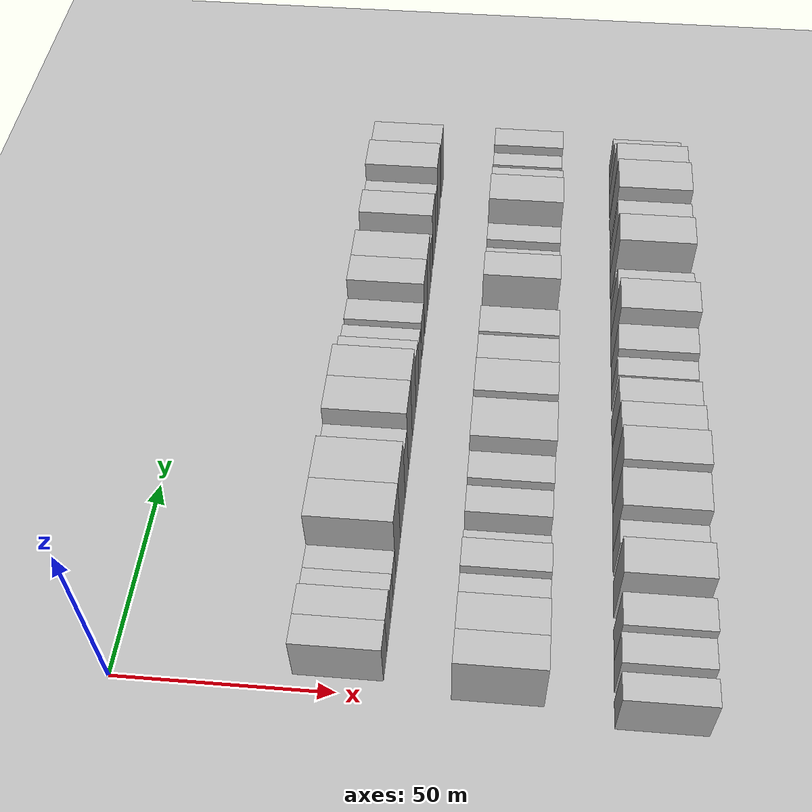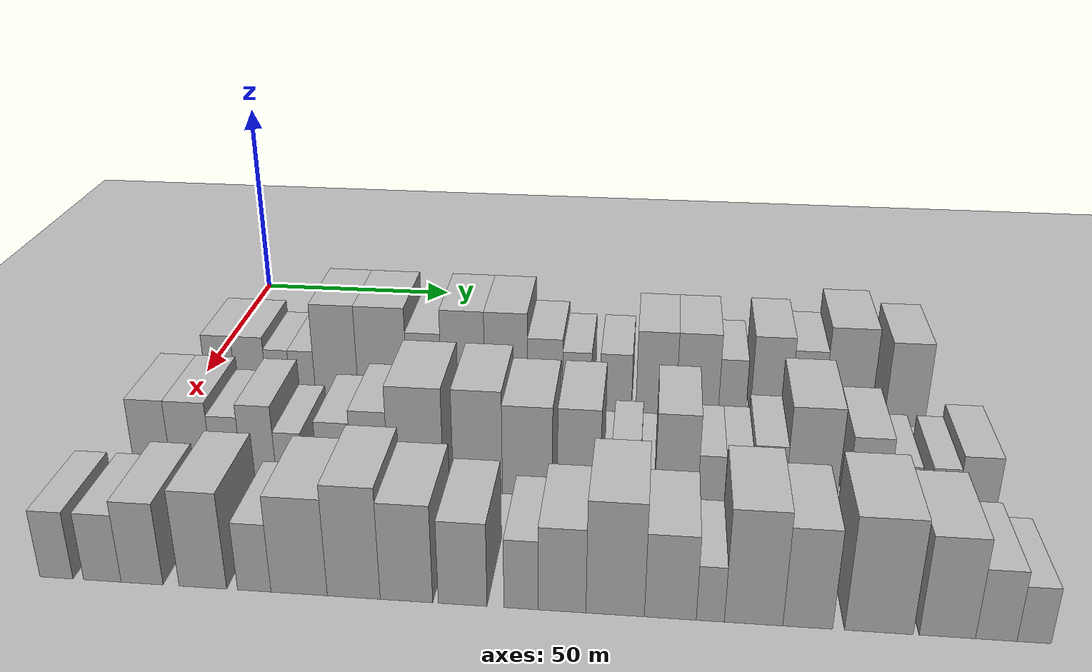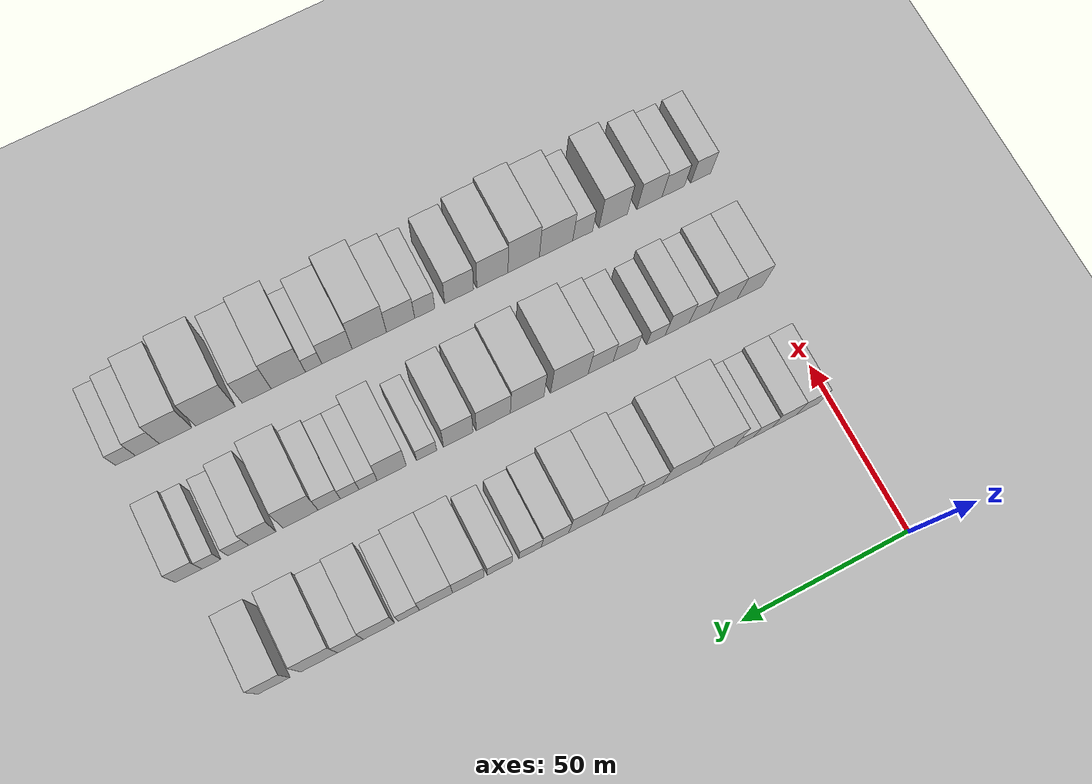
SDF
<sdf version="1.6">
 <world name="default">
  <include><name>ground_plane_1</name><uri>model://HANNAS_ground_plane</uri></include>
  <include>
   <name>ground_plane_2</name>
   <uri>model://HANNAS_ground_plane</uri>
   <pose>100 0 0  0 0 0</pose>
  </include>
  <model name="building_42">
   <static>1</static>
   <pose>50.0000 6.8600 0 0.000000 0.000000 0.000000</pose>
   <link name="link">
    <pose>0 0 7.50 0 0 0</pose>
    <collision name="collision"><geometry><box><size>20.0000 7.0399 15.0000</size></box></geometry></collision>
    <visual name="visual">
     <cast_shadows>0</cast_shadows>
     <geometry><box><size>20.0000 7.0399 15.0000</size></box></geometry>
     <material>
      <script>
       <uri>model://HANNAS_wall/materials/scripts</uri>
       <uri>model://HANNAS_wall/materials/textures</uri>
       <name>vrc/HANNAS_wall</name>
      </script>
     </material>
    </visual>
   </link>
  </model>
  <model name="building_43">
   <static>1</static>
   <pose>50.0000 14.0422 0 0.000000 0.000000 0.000000</pose>
   <link name="link">
    <pose>0 0 7.50 0 0 0</pose>
    <collision name="collision"><geometry><box><size>20.0000 7.3246 15.0000</size></box></geometry></collision>
    <visual name="visual">
     <cast_shadows>0</cast_shadows>
     <geometry><box><size>20.0000 7.3246 15.0000</size></box></geometry>
     <material>
      <script>
       <uri>model://HANNAS_wall/materials/scripts</uri>
       <uri>model://HANNAS_wall/materials/textures</uri>
       <name>vrc/HANNAS_wall</name>
      </script>
     </material>
    </visual>
   </link>
  </model>
  <model name="building_44">
   <static>1</static>
   <pose>50.0000 20.5373 0 0.000000 0.000000 0.000000</pose>
   <link name="link">
    <pose>0 0 6.00 0 0 0</pose>
    <collision name="collision"><geometry><box><size>20.0000 5.6656 12.0000</size></box></geometry></collision>
    <visual name="visual">
     <cast_shadows>0</cast_shadows>
     <geometry><box><size>20.0000 5.6656 12.0000</size></box></geometry>
     <material>
      <script>
       <uri>model://HANNAS_wall/materials/scripts</uri>
       <uri>model://HANNAS_wall/materials/textures</uri>
       <name>vrc/HANNAS_wall</name>
      </script>
     </material>
    </visual>
   </link>
  </model>
  <model name="building_45">
   <static>1</static>
   <pose>50.0000 26.3202 0 0.000000 0.000000 0.000000</pose>
   <link name="link">
    <pose>0 0 6.00 0 0 0</pose>
    <collision name="collision"><geometry><box><size>20.0000 5.9001 12.0000</size></box></geometry></collision>
    <visual name="visual">
     <cast_shadows>0</cast_shadows>
     <geometry><box><size>20.0000 5.9001 12.0000</size></box></geometry>
     <material>
      <script>
       <uri>model://HANNAS_wall/materials/scripts</uri>
       <uri>model://HANNAS_wall/materials/textures</uri>
       <name>vrc/HANNAS_wall</name>
      </script>
     </material>
    </visual>
   </link>
  </model>
  <model name="building_46">
   <static>1</static>
   <pose>50.0000 34.3133 0 0.000000 0.000000 0.000000</pose>
   <link name="link">
    <pose>0 0 12.00 0 0 0</pose>
    <collision name="collision"><geometry><box><size>20.0000 10.0861 24.0000</size></box></geometry></collision>
    <visual name="visual">
     <cast_shadows>0</cast_shadows>
     <geometry><box><size>20.0000 10.0861 24.0000</size></box></geometry>
     <material>
      <script>
       <uri>model://HANNAS_wall/materials/scripts</uri>
       <uri>model://HANNAS_wall/materials/textures</uri>
       <name>vrc/HANNAS_wall</name>
      </script>
     </material>
    </visual>
   </link>
  </model>
  <model name="building_47">
   <static>1</static>
   <pose>50.0000 45.0939 0 0.000000 0.000000 0.000000</pose>
   <link name="link">
    <pose>0 0 12.00 0 0 0</pose>
    <collision name="collision"><geometry><box><size>20.0000 11.4751 24.0000</size></box></geometry></collision>
    <visual name="visual">
     <cast_shadows>0</cast_shadows>
     <geometry><box><size>20.0000 11.4751 24.0000</size></box></geometry>
     <material>
      <script>
       <uri>model://HANNAS_wall/materials/scripts</uri>
       <uri>model://HANNAS_wall/materials/textures</uri>
       <name>vrc/HANNAS_wall</name>
      </script>
     </material>
    </visual>
   </link>
  </model>
  <model name="building_48">
   <static>1</static>
   <pose>50.0000 54.8109 0 0.000000 0.000000 0.000000</pose>
   <link name="link">
    <pose>0 0 9.00 0 0 0</pose>
    <collision name="collision"><geometry><box><size>20.0000 7.9590 18.0000</size></box></geometry></collision>
    <visual name="visual">
     <cast_shadows>0</cast_shadows>
     <geometry><box><size>20.0000 7.9590 18.0000</size></box></geometry>
     <material>
      <script>
       <uri>model://HANNAS_wall/materials/scripts</uri>
       <uri>model://HANNAS_wall/materials/textures</uri>
       <name>vrc/HANNAS_wall</name>
      </script>
     </material>
    </visual>
   </link>
  </model>
  <model name="building_49">
   <static>1</static>
   <pose>50.0000 63.7737 0 0.000000 0.000000 0.000000</pose>
   <link name="link">
    <pose>0 0 12.00 0 0 0</pose>
    <collision name="collision"><geometry><box><size>20.0000 9.9664 24.0000</size></box></geometry></collision>
    <visual name="visual">
     <cast_shadows>0</cast_shadows>
     <geometry><box><size>20.0000 9.9664 24.0000</size></box></geometry>
     <material>
      <script>
       <uri>model://HANNAS_wall/materials/scripts</uri>
       <uri>model://HANNAS_wall/materials/textures</uri>
       <name>vrc/HANNAS_wall</name>
      </script>
     </material>
    </visual>
   </link>
  </model>
  <model name="building_50">
   <static>1</static>
   <pose>50.0000 73.6236 0 0.000000 0.000000 0.000000</pose>
   <link name="link">
    <pose>0 0 12.00 0 0 0</pose>
    <collision name="collision"><geometry><box><size>20.0000 9.7335 24.0000</size></box></geometry></collision>
    <visual name="visual">
     <cast_shadows>0</cast_shadows>
     <geometry><box><size>20.0000 9.7335 24.0000</size></box></geometry>
     <material>
      <script>
       <uri>model://HANNAS_wall/materials/scripts</uri>
       <uri>model://HANNAS_wall/materials/textures</uri>
       <name>vrc/HANNAS_wall</name>
      </script>
     </material>
    </visual>
   </link>
  </model>
  <model name="building_51">
   <static>1</static>
   <pose>50.0000 82.4567 0 0.000000 0.000000 0.000000</pose>
   <link name="link">
    <pose>0 0 9.00 0 0 0</pose>
    <collision name="collision"><geometry><box><size>20.0000 7.9325 18.0000</size></box></geometry></collision>
    <visual name="visual">
     <cast_shadows>0</cast_shadows>
     <geometry><box><size>20.0000 7.9325 18.0000</size></box></geometry>
     <material>
      <script>
       <uri>model://HANNAS_wall/materials/scripts</uri>
       <uri>model://HANNAS_wall/materials/textures</uri>
       <name>vrc/HANNAS_wall</name>
      </script>
     </material>
    </visual>
   </link>
  </model>
  <model name="building_52">
   <static>1</static>
   <pose>50.0000 89.6756 0 0.000000 0.000000 0.000000</pose>
   <link name="link">
    <pose>0 0 7.50 0 0 0</pose>
    <collision name="collision"><geometry><box><size>20.0000 6.5054 15.0000</size></box></geometry></collision>
    <visual name="visual">
     <cast_shadows>0</cast_shadows>
     <geometry><box><size>20.0000 6.5054 15.0000</size></box></geometry>
     <material>
      <script>
       <uri>model://HANNAS_wall/materials/scripts</uri>
       <uri>model://HANNAS_wall/materials/textures</uri>
       <name>vrc/HANNAS_wall</name>
      </script>
     </material>
    </visual>
   </link>
  </model>
  <model name="building_53">
   <static>1</static>
   <pose>50.0000 98.4816 0 0.000000 0.000000 0.000000</pose>
   <link name="link">
    <pose>0 0 7.50 0 0 0</pose>
    <collision name="collision"><geometry><box><size>20.0000 7.1066 15.0000</size></box></geometry></collision>
    <visual name="visual">
     <cast_shadows>0</cast_shadows>
     <geometry><box><size>20.0000 7.1066 15.0000</size></box></geometry>
     <material>
      <script>
       <uri>model://HANNAS_wall/materials/scripts</uri>
       <uri>model://HANNAS_wall/materials/textures</uri>
       <name>vrc/HANNAS_wall</name>
      </script>
     </material>
    </visual>
   </link>
  </model>
  <model name="building_54">
   <static>1</static>
   <pose>50.0000 107.5217 0 0.000000 0.000000 0.000000</pose>
   <link name="link">
    <pose>0 0 10.50 0 0 0</pose>
    <collision name="collision"><geometry><box><size>20.0000 8.9736 21.0000</size></box></geometry></collision>
    <visual name="visual">
     <cast_shadows>0</cast_shadows>
     <geometry><box><size>20.0000 8.9736 21.0000</size></box></geometry>
     <material>
      <script>
       <uri>model://HANNAS_wall/materials/scripts</uri>
       <uri>model://HANNAS_wall/materials/textures</uri>
       <name>vrc/HANNAS_wall</name>
      </script>
     </material>
    </visual>
   </link>
  </model>
  <model name="building_55">
   <static>1</static>
   <pose>50.0000 116.7191 0 0.000000 0.000000 0.000000</pose>
   <link name="link">
    <pose>0 0 10.50 0 0 0</pose>
    <collision name="collision"><geometry><box><size>20.0000 9.4214 21.0000</size></box></geometry></collision>
    <visual name="visual">
     <cast_shadows>0</cast_shadows>
     <geometry><box><size>20.0000 9.4214 21.0000</size></box></geometry>
     <material>
      <script>
       <uri>model://HANNAS_wall/materials/scripts</uri>
       <uri>model://HANNAS_wall/materials/textures</uri>
       <name>vrc/HANNAS_wall</name>
      </script>
     </material>
    </visual>
   </link>
  </model>
  <model name="building_56">
   <static>1</static>
   <pose>50.0000 124.4558 0 0.000000 0.000000 0.000000</pose>
   <link name="link">
    <pose>0 0 7.50 0 0 0</pose>
    <collision name="collision"><geometry><box><size>20.0000 6.0521 15.0000</size></box></geometry></collision>
    <visual name="visual">
     <cast_shadows>0</cast_shadows>
     <geometry><box><size>20.0000 6.0521 15.0000</size></box></geometry>
     <material>
      <script>
       <uri>model://HANNAS_wall/materials/scripts</uri>
       <uri>model://HANNAS_wall/materials/textures</uri>
       <name>vrc/HANNAS_wall</name>
      </script>
     </material>
    </visual>
   </link>
  </model>
  <model name="building_57">
   <static>1</static>
   <pose>50.0000 132.8750 0 0.000000 0.000000 0.000000</pose>
   <link name="link">
    <pose>0 0 10.50 0 0 0</pose>
    <collision name="collision"><geometry><box><size>20.0000 8.7862 21.0000</size></box></geometry></collision>
    <visual name="visual">
     <cast_shadows>0</cast_shadows>
     <geometry><box><size>20.0000 8.7862 21.0000</size></box></geometry>
     <material>
      <script>
       <uri>model://HANNAS_wall/materials/scripts</uri>
       <uri>model://HANNAS_wall/materials/textures</uri>
       <name>vrc/HANNAS_wall</name>
      </script>
     </material>
    </visual>
   </link>
  </model>
  <model name="building_58">
   <static>1</static>
   <pose>50.0000 140.8989 0 0.000000 0.000000 0.000000</pose>
   <link name="link">
    <pose>0 0 9.00 0 0 0</pose>
    <collision name="collision"><geometry><box><size>20.0000 7.2616 18.0000</size></box></geometry></collision>
    <visual name="visual">
     <cast_shadows>0</cast_shadows>
     <geometry><box><size>20.0000 7.2616 18.0000</size></box></geometry>
     <material>
      <script>
       <uri>model://HANNAS_wall/materials/scripts</uri>
       <uri>model://HANNAS_wall/materials/textures</uri>
       <name>vrc/HANNAS_wall</name>
      </script>
     </material>
    </visual>
   </link>
  </model>
  <model name="building_59">
   <static>1</static>
   <pose>50.0000 149.6867 0 0.000000 0.000000 0.000000</pose>
   <link name="link">
    <pose>0 0 12.00 0 0 0</pose>
    <collision name="collision"><geometry><box><size>20.0000 10.3141 24.0000</size></box></geometry></collision>
    <visual name="visual">
     <cast_shadows>0</cast_shadows>
     <geometry><box><size>20.0000 10.3141 24.0000</size></box></geometry>
     <material>
      <script>
       <uri>model://HANNAS_wall/materials/scripts</uri>
       <uri>model://HANNAS_wall/materials/textures</uri>
       <name>vrc/HANNAS_wall</name>
      </script>
     </material>
    </visual>
   </link>
  </model>
  <model name="building_60">
   <static>1</static>
   <pose>50.0000 162.2554 0 0.000000 0.000000 0.000000</pose>
   <link name="link">
    <pose>0 0 10.50 0 0 0</pose>
    <collision name="collision"><geometry><box><size>20.0000 8.8233 21.0000</size></box></geometry></collision>
    <visual name="visual">
     <cast_shadows>0</cast_shadows>
     <geometry><box><size>20.0000 8.8233 21.0000</size></box></geometry>
     <material>
      <script>
       <uri>model://HANNAS_wall/materials/scripts</uri>
       <uri>model://HANNAS_wall/materials/textures</uri>
       <name>vrc/HANNAS_wall</name>
      </script>
     </material>
    </visual>
   </link>
  </model>
  <model name="building_119">
   <static>1</static>
   <pose>85.0000 4.2833 0 0.000000 0.000000 0.000000</pose>
   <link name="link">
    <pose>0 0 9.00 0 0 0</pose>
    <collision name="collision"><geometry><box><size>20.0000 7.8999 18.0000</size></box></geometry></collision>
    <visual name="visual">
     <cast_shadows>0</cast_shadows>
     <geometry><box><size>20.0000 7.8999 18.0000</size></box></geometry>
     <material>
      <script>
       <uri>model://HANNAS_wall/materials/scripts</uri>
       <uri>model://HANNAS_wall/materials/textures</uri>
       <name>vrc/HANNAS_wall</name>
      </script>
     </material>
    </visual>
   </link>
  </model>
  <model name="building_120">
   <static>1</static>
   <pose>85.0000 12.5709 0 0.000000 0.000000 0.000000</pose>
   <link name="link">
    <pose>0 0 9.00 0 0 0</pose>
    <collision name="collision"><geometry><box><size>20.0000 8.6753 18.0000</size></box></geometry></collision>
    <visual name="visual">
     <cast_shadows>0</cast_shadows>
     <geometry><box><size>20.0000 8.6753 18.0000</size></box></geometry>
     <material>
      <script>
       <uri>model://HANNAS_wall/materials/scripts</uri>
       <uri>model://HANNAS_wall/materials/textures</uri>
       <name>vrc/HANNAS_wall</name>
      </script>
     </material>
    </visual>
   </link>
  </model>
  <model name="building_121">
   <static>1</static>
   <pose>85.0000 20.0702 0 0.000000 0.000000 0.000000</pose>
   <link name="link">
    <pose>0 0 7.50 0 0 0</pose>
    <collision name="collision"><geometry><box><size>20.0000 6.3232 15.0000</size></box></geometry></collision>
    <visual name="visual">
     <cast_shadows>0</cast_shadows>
     <geometry><box><size>20.0000 6.3232 15.0000</size></box></geometry>
     <material>
      <script>
       <uri>model://HANNAS_wall/materials/scripts</uri>
       <uri>model://HANNAS_wall/materials/textures</uri>
       <name>vrc/HANNAS_wall</name>
      </script>
     </material>
    </visual>
   </link>
  </model>
  <model name="building_122">
   <static>1</static>
   <pose>85.0000 26.8433 0 0.000000 0.000000 0.000000</pose>
   <link name="link">
    <pose>0 0 9.00 0 0 0</pose>
    <collision name="collision"><geometry><box><size>20.0000 7.2231 18.0000</size></box></geometry></collision>
    <visual name="visual">
     <cast_shadows>0</cast_shadows>
     <geometry><box><size>20.0000 7.2231 18.0000</size></box></geometry>
     <material>
      <script>
       <uri>model://HANNAS_wall/materials/scripts</uri>
       <uri>model://HANNAS_wall/materials/textures</uri>
       <name>vrc/HANNAS_wall</name>
      </script>
     </material>
    </visual>
   </link>
  </model>
  <model name="building_123">
   <static>1</static>
   <pose>85.0000 33.2931 0 0.000000 0.000000 0.000000</pose>
   <link name="link">
    <pose>0 0 6.00 0 0 0</pose>
    <collision name="collision"><geometry><box><size>20.0000 5.6765 12.0000</size></box></geometry></collision>
    <visual name="visual">
     <cast_shadows>0</cast_shadows>
     <geometry><box><size>20.0000 5.6765 12.0000</size></box></geometry>
     <material>
      <script>
       <uri>model://HANNAS_wall/materials/scripts</uri>
       <uri>model://HANNAS_wall/materials/textures</uri>
       <name>vrc/HANNAS_wall</name>
      </script>
     </material>
    </visual>
   </link>
  </model>
  <model name="building_124">
   <static>1</static>
   <pose>85.0000 42.7305 0 0.000000 0.000000 0.000000</pose>
   <link name="link">
    <pose>0 0 7.50 0 0 0</pose>
    <collision name="collision"><geometry><box><size>20.0000 7.1983 15.0000</size></box></geometry></collision>
    <visual name="visual">
     <cast_shadows>0</cast_shadows>
     <geometry><box><size>20.0000 7.1983 15.0000</size></box></geometry>
     <material>
      <script>
       <uri>model://HANNAS_wall/materials/scripts</uri>
       <uri>model://HANNAS_wall/materials/textures</uri>
       <name>vrc/HANNAS_wall</name>
      </script>
     </material>
    </visual>
   </link>
  </model>
  <model name="building_125">
   <static>1</static>
   <pose>85.0000 50.1093 0 0.000000 0.000000 0.000000</pose>
   <link name="link">
    <pose>0 0 9.00 0 0 0</pose>
    <collision name="collision"><geometry><box><size>20.0000 7.5593 18.0000</size></box></geometry></collision>
    <visual name="visual">
     <cast_shadows>0</cast_shadows>
     <geometry><box><size>20.0000 7.5593 18.0000</size></box></geometry>
     <material>
      <script>
       <uri>model://HANNAS_wall/materials/scripts</uri>
       <uri>model://HANNAS_wall/materials/textures</uri>
       <name>vrc/HANNAS_wall</name>
      </script>
     </material>
    </visual>
   </link>
  </model>
  <model name="building_126">
   <static>1</static>
   <pose>85.0000 59.5438 0 0.000000 0.000000 0.000000</pose>
   <link name="link">
    <pose>0 0 12.00 0 0 0</pose>
    <collision name="collision"><geometry><box><size>20.0000 11.3098 24.0000</size></box></geometry></collision>
    <visual name="visual">
     <cast_shadows>0</cast_shadows>
     <geometry><box><size>20.0000 11.3098 24.0000</size></box></geometry>
     <material>
      <script>
       <uri>model://HANNAS_wall/materials/scripts</uri>
       <uri>model://HANNAS_wall/materials/textures</uri>
       <name>vrc/HANNAS_wall</name>
      </script>
     </material>
    </visual>
   </link>
  </model>
  <model name="building_127">
   <static>1</static>
   <pose>85.0000 72.2064 0 0.000000 0.000000 0.000000</pose>
   <link name="link">
    <pose>0 0 12.00 0 0 0</pose>
    <collision name="collision"><geometry><box><size>20.0000 10.0155 24.0000</size></box></geometry></collision>
    <visual name="visual">
     <cast_shadows>0</cast_shadows>
     <geometry><box><size>20.0000 10.0155 24.0000</size></box></geometry>
     <material>
      <script>
       <uri>model://HANNAS_wall/materials/scripts</uri>
       <uri>model://HANNAS_wall/materials/textures</uri>
       <name>vrc/HANNAS_wall</name>
      </script>
     </material>
    </visual>
   </link>
  </model>
  <model name="building_128">
   <static>1</static>
   <pose>85.0000 82.2620 0 0.000000 0.000000 0.000000</pose>
   <link name="link">
    <pose>0 0 10.50 0 0 0</pose>
    <collision name="collision"><geometry><box><size>20.0000 10.0957 21.0000</size></box></geometry></collision>
    <visual name="visual">
     <cast_shadows>0</cast_shadows>
     <geometry><box><size>20.0000 10.0957 21.0000</size></box></geometry>
     <material>
      <script>
       <uri>model://HANNAS_wall/materials/scripts</uri>
       <uri>model://HANNAS_wall/materials/textures</uri>
       <name>vrc/HANNAS_wall</name>
      </script>
     </material>
    </visual>
   </link>
  </model>
  <model name="building_129">
   <static>1</static>
   <pose>85.0000 92.6255 0 0.000000 0.000000 0.000000</pose>
   <link name="link">
    <pose>0 0 10.50 0 0 0</pose>
    <collision name="collision"><geometry><box><size>20.0000 8.6312 21.0000</size></box></geometry></collision>
    <visual name="visual">
     <cast_shadows>0</cast_shadows>
     <geometry><box><size>20.0000 8.6312 21.0000</size></box></geometry>
     <material>
      <script>
       <uri>model://HANNAS_wall/materials/scripts</uri>
       <uri>model://HANNAS_wall/materials/textures</uri>
       <name>vrc/HANNAS_wall</name>
      </script>
     </material>
    </visual>
   </link>
  </model>
  <model name="building_130">
   <static>1</static>
   <pose>85.0000 101.8701 0 0.000000 0.000000 0.000000</pose>
   <link name="link">
    <pose>0 0 6.00 0 0 0</pose>
    <collision name="collision"><geometry><box><size>20.0000 5.8581 12.0000</size></box></geometry></collision>
    <visual name="visual">
     <cast_shadows>0</cast_shadows>
     <geometry><box><size>20.0000 5.8581 12.0000</size></box></geometry>
     <material>
      <script>
       <uri>model://HANNAS_wall/materials/scripts</uri>
       <uri>model://HANNAS_wall/materials/textures</uri>
       <name>vrc/HANNAS_wall</name>
      </script>
     </material>
    </visual>
   </link>
  </model>
  <model name="building_131">
   <static>1</static>
   <pose>85.0000 112.0495 0 0.000000 0.000000 0.000000</pose>
   <link name="link">
    <pose>0 0 10.50 0 0 0</pose>
    <collision name="collision"><geometry><box><size>20.0000 8.5006 21.0000</size></box></geometry></collision>
    <visual name="visual">
     <cast_shadows>0</cast_shadows>
     <geometry><box><size>20.0000 8.5006 21.0000</size></box></geometry>
     <material>
      <script>
       <uri>model://HANNAS_wall/materials/scripts</uri>
       <uri>model://HANNAS_wall/materials/textures</uri>
       <name>vrc/HANNAS_wall</name>
      </script>
     </material>
    </visual>
   </link>
  </model>
  <model name="building_132">
   <static>1</static>
   <pose>85.0000 118.9312 0 0.000000 0.000000 0.000000</pose>
   <link name="link">
    <pose>0 0 6.00 0 0 0</pose>
    <collision name="collision"><geometry><box><size>20.0000 5.2629 12.0000</size></box></geometry></collision>
    <visual name="visual">
     <cast_shadows>0</cast_shadows>
     <geometry><box><size>20.0000 5.2629 12.0000</size></box></geometry>
     <material>
      <script>
       <uri>model://HANNAS_wall/materials/scripts</uri>
       <uri>model://HANNAS_wall/materials/textures</uri>
       <name>vrc/HANNAS_wall</name>
      </script>
     </material>
    </visual>
   </link>
  </model>
  <model name="building_133">
   <static>1</static>
   <pose>85.0000 124.2304 0 0.000000 0.000000 0.000000</pose>
   <link name="link">
    <pose>0 0 6.00 0 0 0</pose>
    <collision name="collision"><geometry><box><size>20.0000 5.3353 12.0000</size></box></geometry></collision>
    <visual name="visual">
     <cast_shadows>0</cast_shadows>
     <geometry><box><size>20.0000 5.3353 12.0000</size></box></geometry>
     <material>
      <script>
       <uri>model://HANNAS_wall/materials/scripts</uri>
       <uri>model://HANNAS_wall/materials/textures</uri>
       <name>vrc/HANNAS_wall</name>
      </script>
     </material>
    </visual>
   </link>
  </model>
  <model name="building_134">
   <static>1</static>
   <pose>85.0000 130.1092 0 0.000000 0.000000 0.000000</pose>
   <link name="link">
    <pose>0 0 7.50 0 0 0</pose>
    <collision name="collision"><geometry><box><size>20.0000 6.4224 15.0000</size></box></geometry></collision>
    <visual name="visual">
     <cast_shadows>0</cast_shadows>
     <geometry><box><size>20.0000 6.4224 15.0000</size></box></geometry>
     <material>
      <script>
       <uri>model://HANNAS_wall/materials/scripts</uri>
       <uri>model://HANNAS_wall/materials/textures</uri>
       <name>vrc/HANNAS_wall</name>
      </script>
     </material>
    </visual>
   </link>
  </model>
  <model name="building_135">
   <static>1</static>
   <pose>85.0000 138.3569 0 0.000000 0.000000 0.000000</pose>
   <link name="link">
    <pose>0 0 12.00 0 0 0</pose>
    <collision name="collision"><geometry><box><size>20.0000 10.0730 24.0000</size></box></geometry></collision>
    <visual name="visual">
     <cast_shadows>0</cast_shadows>
     <geometry><box><size>20.0000 10.0730 24.0000</size></box></geometry>
     <material>
      <script>
       <uri>model://HANNAS_wall/materials/scripts</uri>
       <uri>model://HANNAS_wall/materials/textures</uri>
       <name>vrc/HANNAS_wall</name>
      </script>
     </material>
    </visual>
   </link>
  </model>
  <model name="building_136">
   <static>1</static>
   <pose>85.0000 149.2811 0 0.000000 0.000000 0.000000</pose>
   <link name="link">
    <pose>0 0 9.00 0 0 0</pose>
    <collision name="collision"><geometry><box><size>20.0000 7.7755 18.0000</size></box></geometry></collision>
    <visual name="visual">
     <cast_shadows>0</cast_shadows>
     <geometry><box><size>20.0000 7.7755 18.0000</size></box></geometry>
     <material>
      <script>
       <uri>model://HANNAS_wall/materials/scripts</uri>
       <uri>model://HANNAS_wall/materials/textures</uri>
       <name>vrc/HANNAS_wall</name>
      </script>
     </material>
    </visual>
   </link>
  </model>
  <model name="building_137">
   <static>1</static>
   <pose>85.0000 156.1022 0 0.000000 0.000000 0.000000</pose>
   <link name="link">
    <pose>0 0 6.00 0 0 0</pose>
    <collision name="collision"><geometry><box><size>20.0000 5.8666 12.0000</size></box></geometry></collision>
    <visual name="visual">
     <cast_shadows>0</cast_shadows>
     <geometry><box><size>20.0000 5.8666 12.0000</size></box></geometry>
     <material>
      <script>
       <uri>model://HANNAS_wall/materials/scripts</uri>
       <uri>model://HANNAS_wall/materials/textures</uri>
       <name>vrc/HANNAS_wall</name>
      </script>
     </material>
    </visual>
   </link>
  </model>
  <model name="building_138">
   <static>1</static>
   <pose>85.0000 163.7043 0 0.000000 0.000000 0.000000</pose>
   <link name="link">
    <pose>0 0 6.00 0 0 0</pose>
    <collision name="collision"><geometry><box><size>20.0000 5.3375 12.0000</size></box></geometry></collision>
    <visual name="visual">
     <cast_shadows>0</cast_shadows>
     <geometry><box><size>20.0000 5.3375 12.0000</size></box></geometry>
     <material>
      <script>
       <uri>model://HANNAS_wall/materials/scripts</uri>
       <uri>model://HANNAS_wall/materials/textures</uri>
       <name>vrc/HANNAS_wall</name>
      </script>
     </material>
    </visual>
   </link>
  </model>
  <model name="building_139">
   <static>1</static>
   <pose>85.0000 170.1138 0 0.000000 0.000000 0.000000</pose>
   <link name="link">
    <pose>0 0 7.50 0 0 0</pose>
    <collision name="collision"><geometry><box><size>20.0000 7.4815 15.0000</size></box></geometry></collision>
    <visual name="visual">
     <cast_shadows>0</cast_shadows>
     <geometry><box><size>20.0000 7.4815 15.0000</size></box></geometry>
     <material>
      <script>
       <uri>model://HANNAS_wall/materials/scripts</uri>
       <uri>model://HANNAS_wall/materials/textures</uri>
       <name>vrc/HANNAS_wall</name>
      </script>
     </material>
    </visual>
   </link>
  </model>
  <model name="building_204">
   <static>1</static>
   <pose>120.0000 -0.2987 0 0.000000 0.000000 0.000000</pose>
   <link name="link">
    <pose>0 0 7.50 0 0 0</pose>
    <collision name="collision"><geometry><box><size>20.0000 6.2873 15.0000</size></box></geometry></collision>
    <visual name="visual">
     <cast_shadows>0</cast_shadows>
     <geometry><box><size>20.0000 6.2873 15.0000</size></box></geometry>
     <material>
      <script>
       <uri>model://HANNAS_wall/materials/scripts</uri>
       <uri>model://HANNAS_wall/materials/textures</uri>
       <name>vrc/HANNAS_wall</name>
      </script>
     </material>
    </visual>
   </link>
  </model>
  <model name="building_205">
   <static>1</static>
   <pose>120.0000 8.3926 0 0.000000 0.000000 0.000000</pose>
   <link name="link">
    <pose>0 0 7.50 0 0 0</pose>
    <collision name="collision"><geometry><box><size>20.0000 7.0953 15.0000</size></box></geometry></collision>
    <visual name="visual">
     <cast_shadows>0</cast_shadows>
     <geometry><box><size>20.0000 7.0953 15.0000</size></box></geometry>
     <material>
      <script>
       <uri>model://HANNAS_wall/materials/scripts</uri>
       <uri>model://HANNAS_wall/materials/textures</uri>
       <name>vrc/HANNAS_wall</name>
      </script>
     </material>
    </visual>
   </link>
  </model>
  <model name="building_206">
   <static>1</static>
   <pose>120.0000 15.8673 0 0.000000 0.000000 0.000000</pose>
   <link name="link">
    <pose>0 0 9.00 0 0 0</pose>
    <collision name="collision"><geometry><box><size>20.0000 7.8541 18.0000</size></box></geometry></collision>
    <visual name="visual">
     <cast_shadows>0</cast_shadows>
     <geometry><box><size>20.0000 7.8541 18.0000</size></box></geometry>
     <material>
      <script>
       <uri>model://HANNAS_wall/materials/scripts</uri>
       <uri>model://HANNAS_wall/materials/textures</uri>
       <name>vrc/HANNAS_wall</name>
      </script>
     </material>
    </visual>
   </link>
  </model>
  <model name="building_207">
   <static>1</static>
   <pose>120.0000 27.2185 0 0.000000 0.000000 0.000000</pose>
   <link name="link">
    <pose>0 0 10.50 0 0 0</pose>
    <collision name="collision"><geometry><box><size>20.0000 8.8484 21.0000</size></box></geometry></collision>
    <visual name="visual">
     <cast_shadows>0</cast_shadows>
     <geometry><box><size>20.0000 8.8484 21.0000</size></box></geometry>
     <material>
      <script>
       <uri>model://HANNAS_wall/materials/scripts</uri>
       <uri>model://HANNAS_wall/materials/textures</uri>
       <name>vrc/HANNAS_wall</name>
      </script>
     </material>
    </visual>
   </link>
  </model>
  <model name="building_208">
   <static>1</static>
   <pose>120.0000 36.7317 0 0.000000 0.000000 0.000000</pose>
   <link name="link">
    <pose>0 0 7.50 0 0 0</pose>
    <collision name="collision"><geometry><box><size>20.0000 6.1779 15.0000</size></box></geometry></collision>
    <visual name="visual">
     <cast_shadows>0</cast_shadows>
     <geometry><box><size>20.0000 6.1779 15.0000</size></box></geometry>
     <material>
      <script>
       <uri>model://HANNAS_wall/materials/scripts</uri>
       <uri>model://HANNAS_wall/materials/textures</uri>
       <name>vrc/HANNAS_wall</name>
      </script>
     </material>
    </visual>
   </link>
  </model>
  <model name="building_209">
   <static>1</static>
   <pose>120.0000 44.9792 0 0.000000 0.000000 0.000000</pose>
   <link name="link">
    <pose>0 0 10.50 0 0 0</pose>
    <collision name="collision"><geometry><box><size>20.0000 10.3171 21.0000</size></box></geometry></collision>
    <visual name="visual">
     <cast_shadows>0</cast_shadows>
     <geometry><box><size>20.0000 10.3171 21.0000</size></box></geometry>
     <material>
      <script>
       <uri>model://HANNAS_wall/materials/scripts</uri>
       <uri>model://HANNAS_wall/materials/textures</uri>
       <name>vrc/HANNAS_wall</name>
      </script>
     </material>
    </visual>
   </link>
  </model>
  <model name="building_210">
   <static>1</static>
   <pose>120.0000 54.9448 0 0.000000 0.000000 0.000000</pose>
   <link name="link">
    <pose>0 0 12.00 0 0 0</pose>
    <collision name="collision"><geometry><box><size>20.0000 9.6140 24.0000</size></box></geometry></collision>
    <visual name="visual">
     <cast_shadows>0</cast_shadows>
     <geometry><box><size>20.0000 9.6140 24.0000</size></box></geometry>
     <material>
      <script>
       <uri>model://HANNAS_wall/materials/scripts</uri>
       <uri>model://HANNAS_wall/materials/textures</uri>
       <name>vrc/HANNAS_wall</name>
      </script>
     </material>
    </visual>
   </link>
  </model>
  <model name="building_211">
   <static>1</static>
   <pose>120.0000 64.4830 0 0.000000 0.000000 0.000000</pose>
   <link name="link">
    <pose>0 0 10.50 0 0 0</pose>
    <collision name="collision"><geometry><box><size>20.0000 9.4624 21.0000</size></box></geometry></collision>
    <visual name="visual">
     <cast_shadows>0</cast_shadows>
     <geometry><box><size>20.0000 9.4624 21.0000</size></box></geometry>
     <material>
      <script>
       <uri>model://HANNAS_wall/materials/scripts</uri>
       <uri>model://HANNAS_wall/materials/textures</uri>
       <name>vrc/HANNAS_wall</name>
      </script>
     </material>
    </visual>
   </link>
  </model>
  <model name="building_212">
   <static>1</static>
   <pose>120.0000 74.5725 0 0.000000 0.000000 0.000000</pose>
   <link name="link">
    <pose>0 0 9.00 0 0 0</pose>
    <collision name="collision"><geometry><box><size>20.0000 8.7167 18.0000</size></box></geometry></collision>
    <visual name="visual">
     <cast_shadows>0</cast_shadows>
     <geometry><box><size>20.0000 8.7167 18.0000</size></box></geometry>
     <material>
      <script>
       <uri>model://HANNAS_wall/materials/scripts</uri>
       <uri>model://HANNAS_wall/materials/textures</uri>
       <name>vrc/HANNAS_wall</name>
      </script>
     </material>
    </visual>
   </link>
  </model>
  <model name="building_213">
   <static>1</static>
   <pose>120.0000 84.9377 0 0.000000 0.000000 0.000000</pose>
   <link name="link">
    <pose>0 0 7.50 0 0 0</pose>
    <collision name="collision"><geometry><box><size>20.0000 6.0136 15.0000</size></box></geometry></collision>
    <visual name="visual">
     <cast_shadows>0</cast_shadows>
     <geometry><box><size>20.0000 6.0136 15.0000</size></box></geometry>
     <material>
      <script>
       <uri>model://HANNAS_wall/materials/scripts</uri>
       <uri>model://HANNAS_wall/materials/textures</uri>
       <name>vrc/HANNAS_wall</name>
      </script>
     </material>
    </visual>
   </link>
  </model>
  <model name="building_214">
   <static>1</static>
   <pose>120.0000 92.1725 0 0.000000 0.000000 0.000000</pose>
   <link name="link">
    <pose>0 0 9.00 0 0 0</pose>
    <collision name="collision"><geometry><box><size>20.0000 8.4561 18.0000</size></box></geometry></collision>
    <visual name="visual">
     <cast_shadows>0</cast_shadows>
     <geometry><box><size>20.0000 8.4561 18.0000</size></box></geometry>
     <material>
      <script>
       <uri>model://HANNAS_wall/materials/scripts</uri>
       <uri>model://HANNAS_wall/materials/textures</uri>
       <name>vrc/HANNAS_wall</name>
      </script>
     </material>
    </visual>
   </link>
  </model>
  <model name="building_215">
   <static>1</static>
   <pose>120.0000 101.5123 0 0.000000 0.000000 0.000000</pose>
   <link name="link">
    <pose>0 0 12.00 0 0 0</pose>
    <collision name="collision"><geometry><box><size>20.0000 10.2234 24.0000</size></box></geometry></collision>
    <visual name="visual">
     <cast_shadows>0</cast_shadows>
     <geometry><box><size>20.0000 10.2234 24.0000</size></box></geometry>
     <material>
      <script>
       <uri>model://HANNAS_wall/materials/scripts</uri>
       <uri>model://HANNAS_wall/materials/textures</uri>
       <name>vrc/HANNAS_wall</name>
      </script>
     </material>
    </visual>
   </link>
  </model>
  <model name="building_216">
   <static>1</static>
   <pose>120.0000 111.1158 0 0.000000 0.000000 0.000000</pose>
   <link name="link">
    <pose>0 0 9.00 0 0 0</pose>
    <collision name="collision"><geometry><box><size>20.0000 8.9836 18.0000</size></box></geometry></collision>
    <visual name="visual">
     <cast_shadows>0</cast_shadows>
     <geometry><box><size>20.0000 8.9836 18.0000</size></box></geometry>
     <material>
      <script>
       <uri>model://HANNAS_wall/materials/scripts</uri>
       <uri>model://HANNAS_wall/materials/textures</uri>
       <name>vrc/HANNAS_wall</name>
      </script>
     </material>
    </visual>
   </link>
  </model>
  <model name="building_217">
   <static>1</static>
   <pose>120.0000 118.0272 0 0.000000 0.000000 0.000000</pose>
   <link name="link">
    <pose>0 0 6.00 0 0 0</pose>
    <collision name="collision"><geometry><box><size>20.0000 4.8391 12.0000</size></box></geometry></collision>
    <visual name="visual">
     <cast_shadows>0</cast_shadows>
     <geometry><box><size>20.0000 4.8391 12.0000</size></box></geometry>
     <material>
      <script>
       <uri>model://HANNAS_wall/materials/scripts</uri>
       <uri>model://HANNAS_wall/materials/textures</uri>
       <name>vrc/HANNAS_wall</name>
      </script>
     </material>
    </visual>
   </link>
  </model>
  <model name="building_218">
   <static>1</static>
   <pose>120.0000 125.4550 0 0.000000 0.000000 0.000000</pose>
   <link name="link">
    <pose>0 0 12.00 0 0 0</pose>
    <collision name="collision"><geometry><box><size>20.0000 10.0167 24.0000</size></box></geometry></collision>
    <visual name="visual">
     <cast_shadows>0</cast_shadows>
     <geometry><box><size>20.0000 10.0167 24.0000</size></box></geometry>
     <material>
      <script>
       <uri>model://HANNAS_wall/materials/scripts</uri>
       <uri>model://HANNAS_wall/materials/textures</uri>
       <name>vrc/HANNAS_wall</name>
      </script>
     </material>
    </visual>
   </link>
  </model>
  <model name="building_219">
   <static>1</static>
   <pose>120.0000 134.7089 0 0.000000 0.000000 0.000000</pose>
   <link name="link">
    <pose>0 0 10.50 0 0 0</pose>
    <collision name="collision"><geometry><box><size>20.0000 8.4910 21.0000</size></box></geometry></collision>
    <visual name="visual">
     <cast_shadows>0</cast_shadows>
     <geometry><box><size>20.0000 8.4910 21.0000</size></box></geometry>
     <material>
      <script>
       <uri>model://HANNAS_wall/materials/scripts</uri>
       <uri>model://HANNAS_wall/materials/textures</uri>
       <name>vrc/HANNAS_wall</name>
      </script>
     </material>
    </visual>
   </link>
  </model>
  <model name="building_220">
   <static>1</static>
   <pose>120.0000 146.7288 0 0.000000 0.000000 0.000000</pose>
   <link name="link">
    <pose>0 0 12.00 0 0 0</pose>
    <collision name="collision"><geometry><box><size>20.0000 11.5489 24.0000</size></box></geometry></collision>
    <visual name="visual">
     <cast_shadows>0</cast_shadows>
     <geometry><box><size>20.0000 11.5489 24.0000</size></box></geometry>
     <material>
      <script>
       <uri>model://HANNAS_wall/materials/scripts</uri>
       <uri>model://HANNAS_wall/materials/textures</uri>
       <name>vrc/HANNAS_wall</name>
      </script>
     </material>
    </visual>
   </link>
  </model>
  <model name="building_221">
   <static>1</static>
   <pose>120.0000 158.1879 0 0.000000 0.000000 0.000000</pose>
   <link name="link">
    <pose>0 0 10.50 0 0 0</pose>
    <collision name="collision"><geometry><box><size>20.0000 9.3692 21.0000</size></box></geometry></collision>
    <visual name="visual">
     <cast_shadows>0</cast_shadows>
     <geometry><box><size>20.0000 9.3692 21.0000</size></box></geometry>
     <material>
      <script>
       <uri>model://HANNAS_wall/materials/scripts</uri>
       <uri>model://HANNAS_wall/materials/textures</uri>
       <name>vrc/HANNAS_wall</name>
      </script>
     </material>
    </visual>
   </link>
  </model>
  <model name="building_222">
   <static>1</static>
   <pose>120.0000 166.3083 0 0.000000 0.000000 0.000000</pose>
   <link name="link">
    <pose>0 0 7.50 0 0 0</pose>
    <collision name="collision"><geometry><box><size>20.0000 6.8717 15.0000</size></box></geometry></collision>
    <visual name="visual">
     <cast_shadows>0</cast_shadows>
     <geometry><box><size>20.0000 6.8717 15.0000</size></box></geometry>
     <material>
      <script>
       <uri>model://HANNAS_wall/materials/scripts</uri>
       <uri>model://HANNAS_wall/materials/textures</uri>
       <name>vrc/HANNAS_wall</name>
      </script>
     </material>
    </visual>
   </link>
  </model>
  <model name="building_223">
   <static>1</static>
   <pose>120.0000 172.5622 0 0.000000 0.000000 0.000000</pose>
   <link name="link">
    <pose>0 0 6.00 0 0 0</pose>
    <collision name="collision"><geometry><box><size>20.0000 5.6361 12.0000</size></box></geometry></collision>
    <visual name="visual">
     <cast_shadows>0</cast_shadows>
     <geometry><box><size>20.0000 5.6361 12.0000</size></box></geometry>
     <material>
      <script>
       <uri>model://HANNAS_wall/materials/scripts</uri>
       <uri>model://HANNAS_wall/materials/textures</uri>
       <name>vrc/HANNAS_wall</name>
      </script>
     </material>
    </visual>
   </link>
  </model>
 </world>
</sdf>
